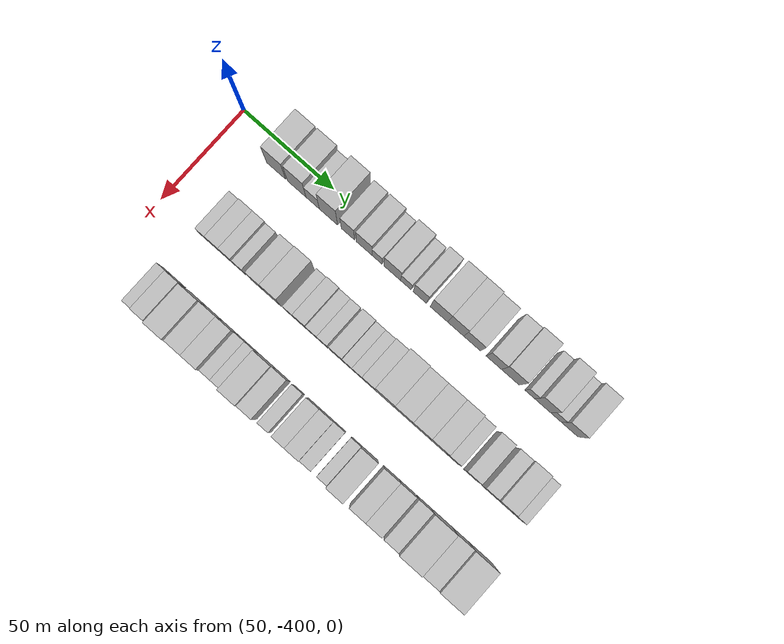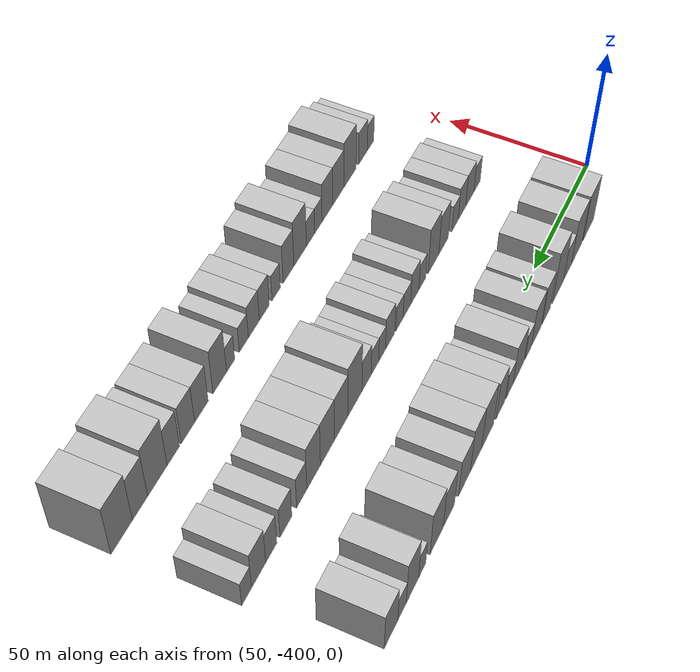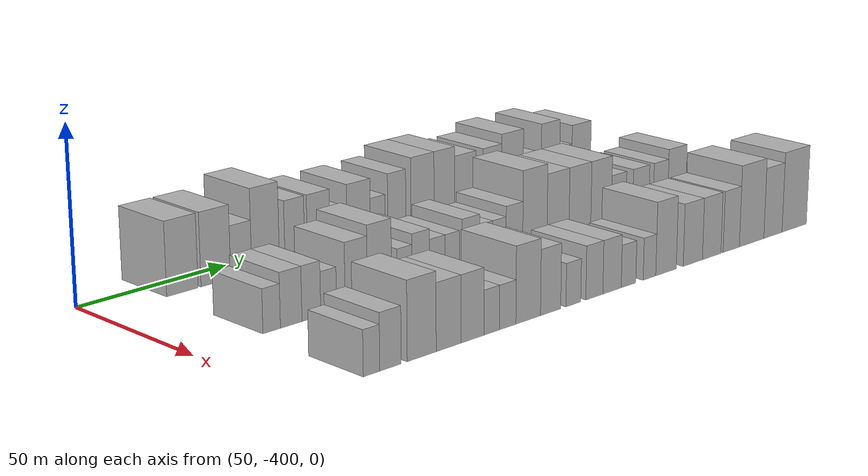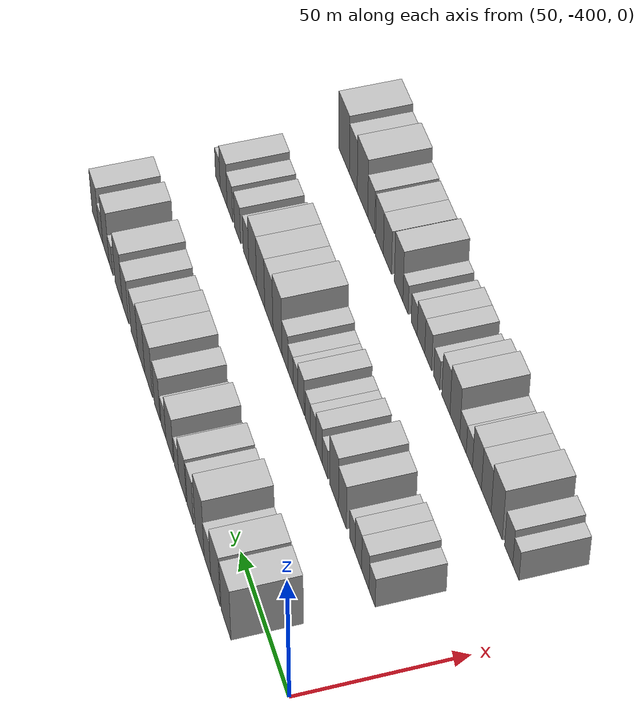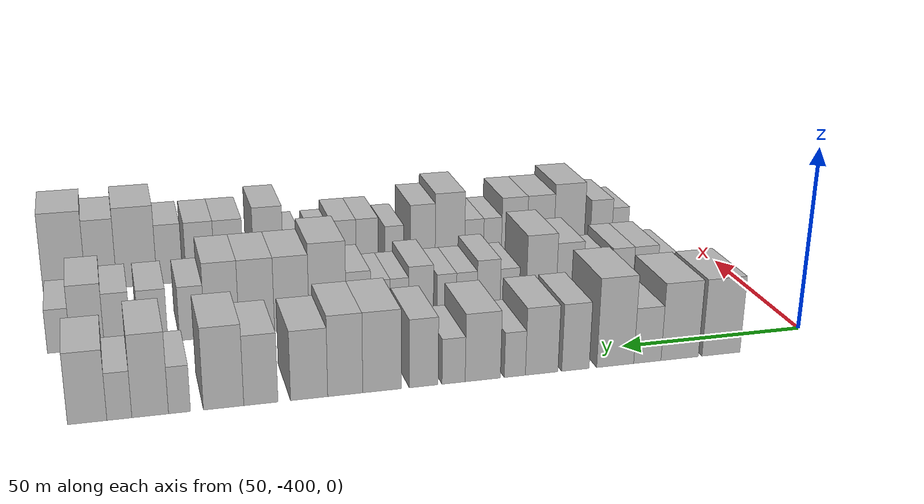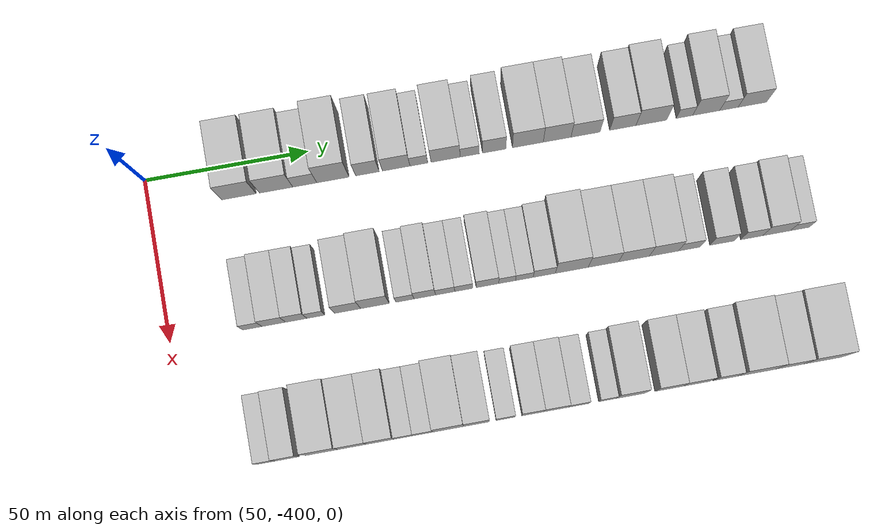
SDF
<sdf version="1.6">
 <world name="default">
  <model name="building_1">
   <static>1</static>
   <pose>50.0000 -372.7563 0 0.000000 0.000000 0.000000</pose>
   <link name="link">
    <pose>0 0 10.50 0 0 0</pose>
    <collision name="collision"><geometry><box><size>20.0000 10.4874 21.0000</size></box></geometry></collision>
    <visual name="visual">
     <cast_shadows>0</cast_shadows>
     <geometry><box><size>20.0000 10.4874 21.0000</size></box></geometry>
     <material>
      <script>
       <uri>model://HANNAS_wall/materials/scripts</uri>
       <uri>model://HANNAS_wall/materials/textures</uri>
       <name>vrc/HANNAS_wall</name>
      </script>
     </material>
    </visual>
   </link>
  </model>
  <model name="building_2">
   <static>1</static>
   <pose>50.0000 -361.4085 0 0.000000 0.000000 0.000000</pose>
   <link name="link">
    <pose>0 0 10.50 0 0 0</pose>
    <collision name="collision"><geometry><box><size>20.0000 10.2082 21.0000</size></box></geometry></collision>
    <visual name="visual">
     <cast_shadows>0</cast_shadows>
     <geometry><box><size>20.0000 10.2082 21.0000</size></box></geometry>
     <material>
      <script>
       <uri>model://HANNAS_wall/materials/scripts</uri>
       <uri>model://HANNAS_wall/materials/textures</uri>
       <name>vrc/HANNAS_wall</name>
      </script>
     </material>
    </visual>
   </link>
  </model>
  <model name="building_3">
   <static>1</static>
   <pose>50.0000 -352.6265 0 0.000000 0.000000 0.000000</pose>
   <link name="link">
    <pose>0 0 7.50 0 0 0</pose>
    <collision name="collision"><geometry><box><size>20.0000 7.3559 15.0000</size></box></geometry></collision>
    <visual name="visual">
     <cast_shadows>0</cast_shadows>
     <geometry><box><size>20.0000 7.3559 15.0000</size></box></geometry>
     <material>
      <script>
       <uri>model://HANNAS_wall/materials/scripts</uri>
       <uri>model://HANNAS_wall/materials/textures</uri>
       <name>vrc/HANNAS_wall</name>
      </script>
     </material>
    </visual>
   </link>
  </model>
  <model name="building_4">
   <static>1</static>
   <pose>50.0000 -344.0010 0 0.000000 0.000000 0.000000</pose>
   <link name="link">
    <pose>0 0 12.00 0 0 0</pose>
    <collision name="collision"><geometry><box><size>20.0000 9.8949 24.0000</size></box></geometry></collision>
    <visual name="visual">
     <cast_shadows>0</cast_shadows>
     <geometry><box><size>20.0000 9.8949 24.0000</size></box></geometry>
     <material>
      <script>
       <uri>model://HANNAS_wall/materials/scripts</uri>
       <uri>model://HANNAS_wall/materials/textures</uri>
       <name>vrc/HANNAS_wall</name>
      </script>
     </material>
    </visual>
   </link>
  </model>
  <model name="building_5">
   <static>1</static>
   <pose>50.0000 -333.4457 0 0.000000 0.000000 0.000000</pose>
   <link name="link">
    <pose>0 0 9.00 0 0 0</pose>
    <collision name="collision"><geometry><box><size>20.0000 7.2157 18.0000</size></box></geometry></collision>
    <visual name="visual">
     <cast_shadows>0</cast_shadows>
     <geometry><box><size>20.0000 7.2157 18.0000</size></box></geometry>
     <material>
      <script>
       <uri>model://HANNAS_wall/materials/scripts</uri>
       <uri>model://HANNAS_wall/materials/textures</uri>
       <name>vrc/HANNAS_wall</name>
      </script>
     </material>
    </visual>
   </link>
  </model>
  <model name="building_6">
   <static>1</static>
   <pose>50.0000 -324.6059 0 0.000000 0.000000 0.000000</pose>
   <link name="link">
    <pose>0 0 9.00 0 0 0</pose>
    <collision name="collision"><geometry><box><size>20.0000 8.4640 18.0000</size></box></geometry></collision>
    <visual name="visual">
     <cast_shadows>0</cast_shadows>
     <geometry><box><size>20.0000 8.4640 18.0000</size></box></geometry>
     <material>
      <script>
       <uri>model://HANNAS_wall/materials/scripts</uri>
       <uri>model://HANNAS_wall/materials/textures</uri>
       <name>vrc/HANNAS_wall</name>
      </script>
     </material>
    </visual>
   </link>
  </model>
  <model name="building_7">
   <static>1</static>
   <pose>50.0000 -317.6455 0 0.000000 0.000000 0.000000</pose>
   <link name="link">
    <pose>0 0 6.00 0 0 0</pose>
    <collision name="collision"><geometry><box><size>20.0000 5.4569 12.0000</size></box></geometry></collision>
    <visual name="visual">
     <cast_shadows>0</cast_shadows>
     <geometry><box><size>20.0000 5.4569 12.0000</size></box></geometry>
     <material>
      <script>
       <uri>model://HANNAS_wall/materials/scripts</uri>
       <uri>model://HANNAS_wall/materials/textures</uri>
       <name>vrc/HANNAS_wall</name>
      </script>
     </material>
    </visual>
   </link>
  </model>
  <model name="building_8">
   <static>1</static>
   <pose>50.0000 -309.4200 0 0.000000 0.000000 0.000000</pose>
   <link name="link">
    <pose>0 0 9.00 0 0 0</pose>
    <collision name="collision"><geometry><box><size>20.0000 8.9942 18.0000</size></box></geometry></collision>
    <visual name="visual">
     <cast_shadows>0</cast_shadows>
     <geometry><box><size>20.0000 8.9942 18.0000</size></box></geometry>
     <material>
      <script>
       <uri>model://HANNAS_wall/materials/scripts</uri>
       <uri>model://HANNAS_wall/materials/textures</uri>
       <name>vrc/HANNAS_wall</name>
      </script>
     </material>
    </visual>
   </link>
  </model>
  <model name="building_9">
   <static>1</static>
   <pose>50.0000 -301.9996 0 0.000000 0.000000 0.000000</pose>
   <link name="link">
    <pose>0 0 6.00 0 0 0</pose>
    <collision name="collision"><geometry><box><size>20.0000 5.8465 12.0000</size></box></geometry></collision>
    <visual name="visual">
     <cast_shadows>0</cast_shadows>
     <geometry><box><size>20.0000 5.8465 12.0000</size></box></geometry>
     <material>
      <script>
       <uri>model://HANNAS_wall/materials/scripts</uri>
       <uri>model://HANNAS_wall/materials/textures</uri>
       <name>vrc/HANNAS_wall</name>
      </script>
     </material>
    </visual>
   </link>
  </model>
  <model name="building_10">
   <static>1</static>
   <pose>50.0000 -294.4724 0 0.000000 0.000000 0.000000</pose>
   <link name="link">
    <pose>0 0 9.00 0 0 0</pose>
    <collision name="collision"><geometry><box><size>20.0000 7.2080 18.0000</size></box></geometry></collision>
    <visual name="visual">
     <cast_shadows>0</cast_shadows>
     <geometry><box><size>20.0000 7.2080 18.0000</size></box></geometry>
     <material>
      <script>
       <uri>model://HANNAS_wall/materials/scripts</uri>
       <uri>model://HANNAS_wall/materials/textures</uri>
       <name>vrc/HANNAS_wall</name>
      </script>
     </material>
    </visual>
   </link>
  </model>
  <model name="building_11">
   <static>1</static>
   <pose>50.0000 -284.1253 0 0.000000 0.000000 0.000000</pose>
   <link name="link">
    <pose>0 0 10.50 0 0 0</pose>
    <collision name="collision"><geometry><box><size>20.0000 9.4863 21.0000</size></box></geometry></collision>
    <visual name="visual">
     <cast_shadows>0</cast_shadows>
     <geometry><box><size>20.0000 9.4863 21.0000</size></box></geometry>
     <material>
      <script>
       <uri>model://HANNAS_wall/materials/scripts</uri>
       <uri>model://HANNAS_wall/materials/textures</uri>
       <name>vrc/HANNAS_wall</name>
      </script>
     </material>
    </visual>
   </link>
  </model>
  <model name="building_12">
   <static>1</static>
   <pose>50.0000 -275.1060 0 0.000000 0.000000 0.000000</pose>
   <link name="link">
    <pose>0 0 10.50 0 0 0</pose>
    <collision name="collision"><geometry><box><size>20.0000 8.5523 21.0000</size></box></geometry></collision>
    <visual name="visual">
     <cast_shadows>0</cast_shadows>
     <geometry><box><size>20.0000 8.5523 21.0000</size></box></geometry>
     <material>
      <script>
       <uri>model://HANNAS_wall/materials/scripts</uri>
       <uri>model://HANNAS_wall/materials/textures</uri>
       <name>vrc/HANNAS_wall</name>
      </script>
     </material>
    </visual>
   </link>
  </model>
  <model name="building_13">
   <static>1</static>
   <pose>50.0000 -266.3483 0 0.000000 0.000000 0.000000</pose>
   <link name="link">
    <pose>0 0 9.00 0 0 0</pose>
    <collision name="collision"><geometry><box><size>20.0000 8.9630 18.0000</size></box></geometry></collision>
    <visual name="visual">
     <cast_shadows>0</cast_shadows>
     <geometry><box><size>20.0000 8.9630 18.0000</size></box></geometry>
     <material>
      <script>
       <uri>model://HANNAS_wall/materials/scripts</uri>
       <uri>model://HANNAS_wall/materials/textures</uri>
       <name>vrc/HANNAS_wall</name>
      </script>
     </material>
    </visual>
   </link>
  </model>
  <model name="building_14">
   <static>1</static>
   <pose>50.0000 -254.8065 0 0.000000 0.000000 0.000000</pose>
   <link name="link">
    <pose>0 0 9.00 0 0 0</pose>
    <collision name="collision"><geometry><box><size>20.0000 8.1206 18.0000</size></box></geometry></collision>
    <visual name="visual">
     <cast_shadows>0</cast_shadows>
     <geometry><box><size>20.0000 8.1206 18.0000</size></box></geometry>
     <material>
      <script>
       <uri>model://HANNAS_wall/materials/scripts</uri>
       <uri>model://HANNAS_wall/materials/textures</uri>
       <name>vrc/HANNAS_wall</name>
      </script>
     </material>
    </visual>
   </link>
  </model>
  <model name="building_15">
   <static>1</static>
   <pose>50.0000 -246.0079 0 0.000000 0.000000 0.000000</pose>
   <link name="link">
    <pose>0 0 10.50 0 0 0</pose>
    <collision name="collision"><geometry><box><size>20.0000 9.4766 21.0000</size></box></geometry></collision>
    <visual name="visual">
     <cast_shadows>0</cast_shadows>
     <geometry><box><size>20.0000 9.4766 21.0000</size></box></geometry>
     <material>
      <script>
       <uri>model://HANNAS_wall/materials/scripts</uri>
       <uri>model://HANNAS_wall/materials/textures</uri>
       <name>vrc/HANNAS_wall</name>
      </script>
     </material>
    </visual>
   </link>
  </model>
  <model name="building_16">
   <static>1</static>
   <pose>50.0000 -235.7292 0 0.000000 0.000000 0.000000</pose>
   <link name="link">
    <pose>0 0 6.00 0 0 0</pose>
    <collision name="collision"><geometry><box><size>20.0000 5.0809 12.0000</size></box></geometry></collision>
    <visual name="visual">
     <cast_shadows>0</cast_shadows>
     <geometry><box><size>20.0000 5.0809 12.0000</size></box></geometry>
     <material>
      <script>
       <uri>model://HANNAS_wall/materials/scripts</uri>
       <uri>model://HANNAS_wall/materials/textures</uri>
       <name>vrc/HANNAS_wall</name>
      </script>
     </material>
    </visual>
   </link>
  </model>
  <model name="building_17">
   <static>1</static>
   <pose>50.0000 -228.9872 0 0.000000 0.000000 0.000000</pose>
   <link name="link">
    <pose>0 0 10.50 0 0 0</pose>
    <collision name="collision"><geometry><box><size>20.0000 8.4031 21.0000</size></box></geometry></collision>
    <visual name="visual">
     <cast_shadows>0</cast_shadows>
     <geometry><box><size>20.0000 8.4031 21.0000</size></box></geometry>
     <material>
      <script>
       <uri>model://HANNAS_wall/materials/scripts</uri>
       <uri>model://HANNAS_wall/materials/textures</uri>
       <name>vrc/HANNAS_wall</name>
      </script>
     </material>
    </visual>
   </link>
  </model>
  <model name="building_18">
   <static>1</static>
   <pose>50.0000 -221.9549 0 0.000000 0.000000 0.000000</pose>
   <link name="link">
    <pose>0 0 6.00 0 0 0</pose>
    <collision name="collision"><geometry><box><size>20.0000 5.6615 12.0000</size></box></geometry></collision>
    <visual name="visual">
     <cast_shadows>0</cast_shadows>
     <geometry><box><size>20.0000 5.6615 12.0000</size></box></geometry>
     <material>
      <script>
       <uri>model://HANNAS_wall/materials/scripts</uri>
       <uri>model://HANNAS_wall/materials/textures</uri>
       <name>vrc/HANNAS_wall</name>
      </script>
     </material>
    </visual>
   </link>
  </model>
  <model name="building_19">
   <static>1</static>
   <pose>50.0000 -214.6884 0 0.000000 0.000000 0.000000</pose>
   <link name="link">
    <pose>0 0 9.00 0 0 0</pose>
    <collision name="collision"><geometry><box><size>20.0000 8.8716 18.0000</size></box></geometry></collision>
    <visual name="visual">
     <cast_shadows>0</cast_shadows>
     <geometry><box><size>20.0000 8.8716 18.0000</size></box></geometry>
     <material>
      <script>
       <uri>model://HANNAS_wall/materials/scripts</uri>
       <uri>model://HANNAS_wall/materials/textures</uri>
       <name>vrc/HANNAS_wall</name>
      </script>
     </material>
    </visual>
   </link>
  </model>
  <model name="building_81">
   <static>1</static>
   <pose>90.0000 -375.1270 0 0.000000 0.000000 0.000000</pose>
   <link name="link">
    <pose>0 0 6.00 0 0 0</pose>
    <collision name="collision"><geometry><box><size>20.0000 5.7460 12.0000</size></box></geometry></collision>
    <visual name="visual">
     <cast_shadows>0</cast_shadows>
     <geometry><box><size>20.0000 5.7460 12.0000</size></box></geometry>
     <material>
      <script>
       <uri>model://HANNAS_wall/materials/scripts</uri>
       <uri>model://HANNAS_wall/materials/textures</uri>
       <name>vrc/HANNAS_wall</name>
      </script>
     </material>
    </visual>
   </link>
  </model>
  <model name="building_82">
   <static>1</static>
   <pose>90.0000 -368.6549 0 0.000000 0.000000 0.000000</pose>
   <link name="link">
    <pose>0 0 7.50 0 0 0</pose>
    <collision name="collision"><geometry><box><size>20.0000 7.1981 15.0000</size></box></geometry></collision>
    <visual name="visual">
     <cast_shadows>0</cast_shadows>
     <geometry><box><size>20.0000 7.1981 15.0000</size></box></geometry>
     <material>
      <script>
       <uri>model://HANNAS_wall/materials/scripts</uri>
       <uri>model://HANNAS_wall/materials/textures</uri>
       <name>vrc/HANNAS_wall</name>
      </script>
     </material>
    </visual>
   </link>
  </model>
  <model name="building_83">
   <static>1</static>
   <pose>90.0000 -361.8597 0 0.000000 0.000000 0.000000</pose>
   <link name="link">
    <pose>0 0 7.50 0 0 0</pose>
    <collision name="collision"><geometry><box><size>20.0000 6.3923 15.0000</size></box></geometry></collision>
    <visual name="visual">
     <cast_shadows>0</cast_shadows>
     <geometry><box><size>20.0000 6.3923 15.0000</size></box></geometry>
     <material>
      <script>
       <uri>model://HANNAS_wall/materials/scripts</uri>
       <uri>model://HANNAS_wall/materials/textures</uri>
       <name>vrc/HANNAS_wall</name>
      </script>
     </material>
    </visual>
   </link>
  </model>
  <model name="building_84">
   <static>1</static>
   <pose>90.0000 -355.9367 0 0.000000 0.000000 0.000000</pose>
   <link name="link">
    <pose>0 0 6.00 0 0 0</pose>
    <collision name="collision"><geometry><box><size>20.0000 5.4535 12.0000</size></box></geometry></collision>
    <visual name="visual">
     <cast_shadows>0</cast_shadows>
     <geometry><box><size>20.0000 5.4535 12.0000</size></box></geometry>
     <material>
      <script>
       <uri>model://HANNAS_wall/materials/scripts</uri>
       <uri>model://HANNAS_wall/materials/textures</uri>
       <name>vrc/HANNAS_wall</name>
      </script>
     </material>
    </visual>
   </link>
  </model>
  <model name="building_85">
   <static>1</static>
   <pose>90.0000 -346.2916 0 0.000000 0.000000 0.000000</pose>
   <link name="link">
    <pose>0 0 9.00 0 0 0</pose>
    <collision name="collision"><geometry><box><size>20.0000 7.8367 18.0000</size></box></geometry></collision>
    <visual name="visual">
     <cast_shadows>0</cast_shadows>
     <geometry><box><size>20.0000 7.8367 18.0000</size></box></geometry>
     <material>
      <script>
       <uri>model://HANNAS_wall/materials/scripts</uri>
       <uri>model://HANNAS_wall/materials/textures</uri>
       <name>vrc/HANNAS_wall</name>
      </script>
     </material>
    </visual>
   </link>
  </model>
  <model name="building_86">
   <static>1</static>
   <pose>90.0000 -338.0165 0 0.000000 0.000000 0.000000</pose>
   <link name="link">
    <pose>0 0 10.50 0 0 0</pose>
    <collision name="collision"><geometry><box><size>20.0000 8.7134 21.0000</size></box></geometry></collision>
    <visual name="visual">
     <cast_shadows>0</cast_shadows>
     <geometry><box><size>20.0000 8.7134 21.0000</size></box></geometry>
     <material>
      <script>
       <uri>model://HANNAS_wall/materials/scripts</uri>
       <uri>model://HANNAS_wall/materials/textures</uri>
       <name>vrc/HANNAS_wall</name>
      </script>
     </material>
    </visual>
   </link>
  </model>
  <model name="building_87">
   <static>1</static>
   <pose>90.0000 -328.9171 0 0.000000 0.000000 0.000000</pose>
   <link name="link">
    <pose>0 0 6.00 0 0 0</pose>
    <collision name="collision"><geometry><box><size>20.0000 5.4854 12.0000</size></box></geometry></collision>
    <visual name="visual">
     <cast_shadows>0</cast_shadows>
     <geometry><box><size>20.0000 5.4854 12.0000</size></box></geometry>
     <material>
      <script>
       <uri>model://HANNAS_wall/materials/scripts</uri>
       <uri>model://HANNAS_wall/materials/textures</uri>
       <name>vrc/HANNAS_wall</name>
      </script>
     </material>
    </visual>
   </link>
  </model>
  <model name="building_88">
   <static>1</static>
   <pose>90.0000 -322.8982 0 0.000000 0.000000 0.000000</pose>
   <link name="link">
    <pose>0 0 7.50 0 0 0</pose>
    <collision name="collision"><geometry><box><size>20.0000 6.5524 15.0000</size></box></geometry></collision>
    <visual name="visual">
     <cast_shadows>0</cast_shadows>
     <geometry><box><size>20.0000 6.5524 15.0000</size></box></geometry>
     <material>
      <script>
       <uri>model://HANNAS_wall/materials/scripts</uri>
       <uri>model://HANNAS_wall/materials/textures</uri>
       <name>vrc/HANNAS_wall</name>
      </script>
     </material>
    </visual>
   </link>
  </model>
  <model name="building_89">
   <static>1</static>
   <pose>90.0000 -316.6875 0 0.000000 0.000000 0.000000</pose>
   <link name="link">
    <pose>0 0 6.00 0 0 0</pose>
    <collision name="collision"><geometry><box><size>20.0000 5.8691 12.0000</size></box></geometry></collision>
    <visual name="visual">
     <cast_shadows>0</cast_shadows>
     <geometry><box><size>20.0000 5.8691 12.0000</size></box></geometry>
     <material>
      <script>
       <uri>model://HANNAS_wall/materials/scripts</uri>
       <uri>model://HANNAS_wall/materials/textures</uri>
       <name>vrc/HANNAS_wall</name>
      </script>
     </material>
    </visual>
   </link>
  </model>
  <model name="building_90">
   <static>1</static>
   <pose>90.0000 -311.0227 0 0.000000 0.000000 0.000000</pose>
   <link name="link">
    <pose>0 0 6.00 0 0 0</pose>
    <collision name="collision"><geometry><box><size>20.0000 5.4605 12.0000</size></box></geometry></collision>
    <visual name="visual">
     <cast_shadows>0</cast_shadows>
     <geometry><box><size>20.0000 5.4605 12.0000</size></box></geometry>
     <material>
      <script>
       <uri>model://HANNAS_wall/materials/scripts</uri>
       <uri>model://HANNAS_wall/materials/textures</uri>
       <name>vrc/HANNAS_wall</name>
      </script>
     </material>
    </visual>
   </link>
  </model>
  <model name="building_91">
   <static>1</static>
   <pose>90.0000 -303.8511 0 0.000000 0.000000 0.000000</pose>
   <link name="link">
    <pose>0 0 7.50 0 0 0</pose>
    <collision name="collision"><geometry><box><size>20.0000 6.8826 15.0000</size></box></geometry></collision>
    <visual name="visual">
     <cast_shadows>0</cast_shadows>
     <geometry><box><size>20.0000 6.8826 15.0000</size></box></geometry>
     <material>
      <script>
       <uri>model://HANNAS_wall/materials/scripts</uri>
       <uri>model://HANNAS_wall/materials/textures</uri>
       <name>vrc/HANNAS_wall</name>
      </script>
     </material>
    </visual>
   </link>
  </model>
  <model name="building_92">
   <static>1</static>
   <pose>90.0000 -297.8560 0 0.000000 0.000000 0.000000</pose>
   <link name="link">
    <pose>0 0 6.00 0 0 0</pose>
    <collision name="collision"><geometry><box><size>20.0000 5.1076 12.0000</size></box></geometry></collision>
    <visual name="visual">
     <cast_shadows>0</cast_shadows>
     <geometry><box><size>20.0000 5.1076 12.0000</size></box></geometry>
     <material>
      <script>
       <uri>model://HANNAS_wall/materials/scripts</uri>
       <uri>model://HANNAS_wall/materials/textures</uri>
       <name>vrc/HANNAS_wall</name>
      </script>
     </material>
    </visual>
   </link>
  </model>
  <model name="building_93">
   <static>1</static>
   <pose>90.0000 -292.6123 0 0.000000 0.000000 0.000000</pose>
   <link name="link">
    <pose>0 0 6.00 0 0 0</pose>
    <collision name="collision"><geometry><box><size>20.0000 5.3798 12.0000</size></box></geometry></collision>
    <visual name="visual">
     <cast_shadows>0</cast_shadows>
     <geometry><box><size>20.0000 5.3798 12.0000</size></box></geometry>
     <material>
      <script>
       <uri>model://HANNAS_wall/materials/scripts</uri>
       <uri>model://HANNAS_wall/materials/textures</uri>
       <name>vrc/HANNAS_wall</name>
      </script>
     </material>
    </visual>
   </link>
  </model>
  <model name="building_94">
   <static>1</static>
   <pose>90.0000 -286.5509 0 0.000000 0.000000 0.000000</pose>
   <link name="link">
    <pose>0 0 7.50 0 0 0</pose>
    <collision name="collision"><geometry><box><size>20.0000 6.7430 15.0000</size></box></geometry></collision>
    <visual name="visual">
     <cast_shadows>0</cast_shadows>
     <geometry><box><size>20.0000 6.7430 15.0000</size></box></geometry>
     <material>
      <script>
       <uri>model://HANNAS_wall/materials/scripts</uri>
       <uri>model://HANNAS_wall/materials/textures</uri>
       <name>vrc/HANNAS_wall</name>
      </script>
     </material>
    </visual>
   </link>
  </model>
  <model name="building_95">
   <static>1</static>
   <pose>90.0000 -278.1666 0 0.000000 0.000000 0.000000</pose>
   <link name="link">
    <pose>0 0 12.00 0 0 0</pose>
    <collision name="collision"><geometry><box><size>20.0000 10.0256 24.0000</size></box></geometry></collision>
    <visual name="visual">
     <cast_shadows>0</cast_shadows>
     <geometry><box><size>20.0000 10.0256 24.0000</size></box></geometry>
     <material>
      <script>
       <uri>model://HANNAS_wall/materials/scripts</uri>
       <uri>model://HANNAS_wall/materials/textures</uri>
       <name>vrc/HANNAS_wall</name>
      </script>
     </material>
    </visual>
   </link>
  </model>
  <model name="building_96">
   <static>1</static>
   <pose>90.0000 -268.5177 0 0.000000 0.000000 0.000000</pose>
   <link name="link">
    <pose>0 0 10.50 0 0 0</pose>
    <collision name="collision"><geometry><box><size>20.0000 9.2722 21.0000</size></box></geometry></collision>
    <visual name="visual">
     <cast_shadows>0</cast_shadows>
     <geometry><box><size>20.0000 9.2722 21.0000</size></box></geometry>
     <material>
      <script>
       <uri>model://HANNAS_wall/materials/scripts</uri>
       <uri>model://HANNAS_wall/materials/textures</uri>
       <name>vrc/HANNAS_wall</name>
      </script>
     </material>
    </visual>
   </link>
  </model>
  <model name="building_97">
   <static>1</static>
   <pose>90.0000 -259.1848 0 0.000000 0.000000 0.000000</pose>
   <link name="link">
    <pose>0 0 10.50 0 0 0</pose>
    <collision name="collision"><geometry><box><size>20.0000 9.3937 21.0000</size></box></geometry></collision>
    <visual name="visual">
     <cast_shadows>0</cast_shadows>
     <geometry><box><size>20.0000 9.3937 21.0000</size></box></geometry>
     <material>
      <script>
       <uri>model://HANNAS_wall/materials/scripts</uri>
       <uri>model://HANNAS_wall/materials/textures</uri>
       <name>vrc/HANNAS_wall</name>
      </script>
     </material>
    </visual>
   </link>
  </model>
  <model name="building_98">
   <static>1</static>
   <pose>90.0000 -249.9941 0 0.000000 0.000000 0.000000</pose>
   <link name="link">
    <pose>0 0 10.50 0 0 0</pose>
    <collision name="collision"><geometry><box><size>20.0000 8.9876 21.0000</size></box></geometry></collision>
    <visual name="visual">
     <cast_shadows>0</cast_shadows>
     <geometry><box><size>20.0000 8.9876 21.0000</size></box></geometry>
     <material>
      <script>
       <uri>model://HANNAS_wall/materials/scripts</uri>
       <uri>model://HANNAS_wall/materials/textures</uri>
       <name>vrc/HANNAS_wall</name>
      </script>
     </material>
    </visual>
   </link>
  </model>
  <model name="building_99">
   <static>1</static>
   <pose>90.0000 -242.2187 0 0.000000 0.000000 0.000000</pose>
   <link name="link">
    <pose>0 0 7.50 0 0 0</pose>
    <collision name="collision"><geometry><box><size>20.0000 6.5631 15.0000</size></box></geometry></collision>
    <visual name="visual">
     <cast_shadows>0</cast_shadows>
     <geometry><box><size>20.0000 6.5631 15.0000</size></box></geometry>
     <material>
      <script>
       <uri>model://HANNAS_wall/materials/scripts</uri>
       <uri>model://HANNAS_wall/materials/textures</uri>
       <name>vrc/HANNAS_wall</name>
      </script>
     </material>
    </visual>
   </link>
  </model>
  <model name="building_100">
   <static>1</static>
   <pose>90.0000 -232.2172 0 0.000000 0.000000 0.000000</pose>
   <link name="link">
    <pose>0 0 7.50 0 0 0</pose>
    <collision name="collision"><geometry><box><size>20.0000 7.4400 15.0000</size></box></geometry></collision>
    <visual name="visual">
     <cast_shadows>0</cast_shadows>
     <geometry><box><size>20.0000 7.4400 15.0000</size></box></geometry>
     <material>
      <script>
       <uri>model://HANNAS_wall/materials/scripts</uri>
       <uri>model://HANNAS_wall/materials/textures</uri>
       <name>vrc/HANNAS_wall</name>
      </script>
     </material>
    </visual>
   </link>
  </model>
  <model name="building_101">
   <static>1</static>
   <pose>90.0000 -223.1096 0 0.000000 0.000000 0.000000</pose>
   <link name="link">
    <pose>0 0 7.50 0 0 0</pose>
    <collision name="collision"><geometry><box><size>20.0000 6.7752 15.0000</size></box></geometry></collision>
    <visual name="visual">
     <cast_shadows>0</cast_shadows>
     <geometry><box><size>20.0000 6.7752 15.0000</size></box></geometry>
     <material>
      <script>
       <uri>model://HANNAS_wall/materials/scripts</uri>
       <uri>model://HANNAS_wall/materials/textures</uri>
       <name>vrc/HANNAS_wall</name>
      </script>
     </material>
    </visual>
   </link>
  </model>
  <model name="building_102">
   <static>1</static>
   <pose>90.0000 -215.4660 0 0.000000 0.000000 0.000000</pose>
   <link name="link">
    <pose>0 0 9.00 0 0 0</pose>
    <collision name="collision"><geometry><box><size>20.0000 8.5120 18.0000</size></box></geometry></collision>
    <visual name="visual">
     <cast_shadows>0</cast_shadows>
     <geometry><box><size>20.0000 8.5120 18.0000</size></box></geometry>
     <material>
      <script>
       <uri>model://HANNAS_wall/materials/scripts</uri>
       <uri>model://HANNAS_wall/materials/textures</uri>
       <name>vrc/HANNAS_wall</name>
      </script>
     </material>
    </visual>
   </link>
  </model>
  <model name="building_103">
   <static>1</static>
   <pose>90.0000 -208.3196 0 0.000000 0.000000 0.000000</pose>
   <link name="link">
    <pose>0 0 6.00 0 0 0</pose>
    <collision name="collision"><geometry><box><size>20.0000 5.7806 12.0000</size></box></geometry></collision>
    <visual name="visual">
     <cast_shadows>0</cast_shadows>
     <geometry><box><size>20.0000 5.7806 12.0000</size></box></geometry>
     <material>
      <script>
       <uri>model://HANNAS_wall/materials/scripts</uri>
       <uri>model://HANNAS_wall/materials/textures</uri>
       <name>vrc/HANNAS_wall</name>
      </script>
     </material>
    </visual>
   </link>
  </model>
  <model name="building_170">
   <static>1</static>
   <pose>130.0000 -377.3194 0 0.000000 0.000000 0.000000</pose>
   <link name="link">
    <pose>0 0 6.00 0 0 0</pose>
    <collision name="collision"><geometry><box><size>20.0000 5.3612 12.0000</size></box></geometry></collision>
    <visual name="visual">
     <cast_shadows>0</cast_shadows>
     <geometry><box><size>20.0000 5.3612 12.0000</size></box></geometry>
     <material>
      <script>
       <uri>model://HANNAS_wall/materials/scripts</uri>
       <uri>model://HANNAS_wall/materials/textures</uri>
       <name>vrc/HANNAS_wall</name>
      </script>
     </material>
    </visual>
   </link>
  </model>
  <model name="building_171">
   <static>1</static>
   <pose>130.0000 -371.1107 0 0.000000 0.000000 0.000000</pose>
   <link name="link">
    <pose>0 0 7.50 0 0 0</pose>
    <collision name="collision"><geometry><box><size>20.0000 7.0563 15.0000</size></box></geometry></collision>
    <visual name="visual">
     <cast_shadows>0</cast_shadows>
     <geometry><box><size>20.0000 7.0563 15.0000</size></box></geometry>
     <material>
      <script>
       <uri>model://HANNAS_wall/materials/scripts</uri>
       <uri>model://HANNAS_wall/materials/textures</uri>
       <name>vrc/HANNAS_wall</name>
      </script>
     </material>
    </visual>
   </link>
  </model>
  <model name="building_172">
   <static>1</static>
   <pose>130.0000 -360.6741 0 0.000000 0.000000 0.000000</pose>
   <link name="link">
    <pose>0 0 10.50 0 0 0</pose>
    <collision name="collision"><geometry><box><size>20.0000 9.8169 21.0000</size></box></geometry></collision>
    <visual name="visual">
     <cast_shadows>0</cast_shadows>
     <geometry><box><size>20.0000 9.8169 21.0000</size></box></geometry>
     <material>
      <script>
       <uri>model://HANNAS_wall/materials/scripts</uri>
       <uri>model://HANNAS_wall/materials/textures</uri>
       <name>vrc/HANNAS_wall</name>
      </script>
     </material>
    </visual>
   </link>
  </model>
  <model name="building_173">
   <static>1</static>
   <pose>130.0000 -351.4512 0 0.000000 0.000000 0.000000</pose>
   <link name="link">
    <pose>0 0 9.00 0 0 0</pose>
    <collision name="collision"><geometry><box><size>20.0000 8.6289 18.0000</size></box></geometry></collision>
    <visual name="visual">
     <cast_shadows>0</cast_shadows>
     <geometry><box><size>20.0000 8.6289 18.0000</size></box></geometry>
     <material>
      <script>
       <uri>model://HANNAS_wall/materials/scripts</uri>
       <uri>model://HANNAS_wall/materials/textures</uri>
       <name>vrc/HANNAS_wall</name>
      </script>
     </material>
    </visual>
   </link>
  </model>
  <model name="building_174">
   <static>1</static>
   <pose>130.0000 -343.0787 0 0.000000 0.000000 0.000000</pose>
   <link name="link">
    <pose>0 0 9.00 0 0 0</pose>
    <collision name="collision"><geometry><box><size>20.0000 8.1161 18.0000</size></box></geometry></collision>
    <visual name="visual">
     <cast_shadows>0</cast_shadows>
     <geometry><box><size>20.0000 8.1161 18.0000</size></box></geometry>
     <material>
      <script>
       <uri>model://HANNAS_wall/materials/scripts</uri>
       <uri>model://HANNAS_wall/materials/textures</uri>
       <name>vrc/HANNAS_wall</name>
      </script>
     </material>
    </visual>
   </link>
  </model>
  <model name="building_175">
   <static>1</static>
   <pose>130.0000 -336.1950 0 0.000000 0.000000 0.000000</pose>
   <link name="link">
    <pose>0 0 6.00 0 0 0</pose>
    <collision name="collision"><geometry><box><size>20.0000 5.6513 12.0000</size></box></geometry></collision>
    <visual name="visual">
     <cast_shadows>0</cast_shadows>
     <geometry><box><size>20.0000 5.6513 12.0000</size></box></geometry>
     <material>
      <script>
       <uri>model://HANNAS_wall/materials/scripts</uri>
       <uri>model://HANNAS_wall/materials/textures</uri>
       <name>vrc/HANNAS_wall</name>
      </script>
     </material>
    </visual>
   </link>
  </model>
  <model name="building_176">
   <static>1</static>
   <pose>130.0000 -330.3906 0 0.000000 0.000000 0.000000</pose>
   <link name="link">
    <pose>0 0 6.00 0 0 0</pose>
    <collision name="collision"><geometry><box><size>20.0000 5.9576 12.0000</size></box></geometry></collision>
    <visual name="visual">
     <cast_shadows>0</cast_shadows>
     <geometry><box><size>20.0000 5.9576 12.0000</size></box></geometry>
     <material>
      <script>
       <uri>model://HANNAS_wall/materials/scripts</uri>
       <uri>model://HANNAS_wall/materials/textures</uri>
       <name>vrc/HANNAS_wall</name>
      </script>
     </material>
    </visual>
   </link>
  </model>
  <model name="building_177">
   <static>1</static>
   <pose>130.0000 -322.8270 0 0.000000 0.000000 0.000000</pose>
   <link name="link">
    <pose>0 0 10.50 0 0 0</pose>
    <collision name="collision"><geometry><box><size>20.0000 9.1695 21.0000</size></box></geometry></collision>
    <visual name="visual">
     <cast_shadows>0</cast_shadows>
     <geometry><box><size>20.0000 9.1695 21.0000</size></box></geometry>
     <material>
      <script>
       <uri>model://HANNAS_wall/materials/scripts</uri>
       <uri>model://HANNAS_wall/materials/textures</uri>
       <name>vrc/HANNAS_wall</name>
      </script>
     </material>
    </visual>
   </link>
  </model>
  <model name="building_178">
   <static>1</static>
   <pose>130.0000 -314.3953 0 0.000000 0.000000 0.000000</pose>
   <link name="link">
    <pose>0 0 9.00 0 0 0</pose>
    <collision name="collision"><geometry><box><size>20.0000 7.6940 18.0000</size></box></geometry></collision>
    <visual name="visual">
     <cast_shadows>0</cast_shadows>
     <geometry><box><size>20.0000 7.6940 18.0000</size></box></geometry>
     <material>
      <script>
       <uri>model://HANNAS_wall/materials/scripts</uri>
       <uri>model://HANNAS_wall/materials/textures</uri>
       <name>vrc/HANNAS_wall</name>
      </script>
     </material>
    </visual>
   </link>
  </model>
  <model name="building_179">
   <static>1</static>
   <pose>130.0000 -305.6722 0 0.000000 0.000000 0.000000</pose>
   <link name="link">
    <pose>0 0 6.00 0 0 0</pose>
    <collision name="collision"><geometry><box><size>20.0000 5.7523 12.0000</size></box></geometry></collision>
    <visual name="visual">
     <cast_shadows>0</cast_shadows>
     <geometry><box><size>20.0000 5.7523 12.0000</size></box></geometry>
     <material>
      <script>
       <uri>model://HANNAS_wall/materials/scripts</uri>
       <uri>model://HANNAS_wall/materials/textures</uri>
       <name>vrc/HANNAS_wall</name>
      </script>
     </material>
    </visual>
   </link>
  </model>
  <model name="building_180">
   <static>1</static>
   <pose>130.0000 -297.4194 0 0.000000 0.000000 0.000000</pose>
   <link name="link">
    <pose>0 0 7.50 0 0 0</pose>
    <collision name="collision"><geometry><box><size>20.0000 6.7532 15.0000</size></box></geometry></collision>
    <visual name="visual">
     <cast_shadows>0</cast_shadows>
     <geometry><box><size>20.0000 6.7532 15.0000</size></box></geometry>
     <material>
      <script>
       <uri>model://HANNAS_wall/materials/scripts</uri>
       <uri>model://HANNAS_wall/materials/textures</uri>
       <name>vrc/HANNAS_wall</name>
      </script>
     </material>
    </visual>
   </link>
  </model>
  <model name="building_181">
   <static>1</static>
   <pose>130.0000 -290.3353 0 0.000000 0.000000 0.000000</pose>
   <link name="link">
    <pose>0 0 7.50 0 0 0</pose>
    <collision name="collision"><geometry><box><size>20.0000 7.4150 15.0000</size></box></geometry></collision>
    <visual name="visual">
     <cast_shadows>0</cast_shadows>
     <geometry><box><size>20.0000 7.4150 15.0000</size></box></geometry>
     <material>
      <script>
       <uri>model://HANNAS_wall/materials/scripts</uri>
       <uri>model://HANNAS_wall/materials/textures</uri>
       <name>vrc/HANNAS_wall</name>
      </script>
     </material>
    </visual>
   </link>
  </model>
  <model name="building_182">
   <static>1</static>
   <pose>130.0000 -283.6296 0 0.000000 0.000000 0.000000</pose>
   <link name="link">
    <pose>0 0 6.00 0 0 0</pose>
    <collision name="collision"><geometry><box><size>20.0000 5.9964 12.0000</size></box></geometry></collision>
    <visual name="visual">
     <cast_shadows>0</cast_shadows>
     <geometry><box><size>20.0000 5.9964 12.0000</size></box></geometry>
     <material>
      <script>
       <uri>model://HANNAS_wall/materials/scripts</uri>
       <uri>model://HANNAS_wall/materials/textures</uri>
       <name>vrc/HANNAS_wall</name>
      </script>
     </material>
    </visual>
   </link>
  </model>
  <model name="building_183">
   <static>1</static>
   <pose>130.0000 -274.9904 0 0.000000 0.000000 0.000000</pose>
   <link name="link">
    <pose>0 0 6.00 0 0 0</pose>
    <collision name="collision"><geometry><box><size>20.0000 5.2821 12.0000</size></box></geometry></collision>
    <visual name="visual">
     <cast_shadows>0</cast_shadows>
     <geometry><box><size>20.0000 5.2821 12.0000</size></box></geometry>
     <material>
      <script>
       <uri>model://HANNAS_wall/materials/scripts</uri>
       <uri>model://HANNAS_wall/materials/textures</uri>
       <name>vrc/HANNAS_wall</name>
      </script>
     </material>
    </visual>
   </link>
  </model>
  <model name="building_184">
   <static>1</static>
   <pose>130.0000 -267.9913 0 0.000000 0.000000 0.000000</pose>
   <link name="link">
    <pose>0 0 10.50 0 0 0</pose>
    <collision name="collision"><geometry><box><size>20.0000 8.7160 21.0000</size></box></geometry></collision>
    <visual name="visual">
     <cast_shadows>0</cast_shadows>
     <geometry><box><size>20.0000 8.7160 21.0000</size></box></geometry>
     <material>
      <script>
       <uri>model://HANNAS_wall/materials/scripts</uri>
       <uri>model://HANNAS_wall/materials/textures</uri>
       <name>vrc/HANNAS_wall</name>
      </script>
     </material>
    </visual>
   </link>
  </model>
  <model name="building_185">
   <static>1</static>
   <pose>130.0000 -256.4386 0 0.000000 0.000000 0.000000</pose>
   <link name="link">
    <pose>0 0 9.00 0 0 0</pose>
    <collision name="collision"><geometry><box><size>20.0000 8.3895 18.0000</size></box></geometry></collision>
    <visual name="visual">
     <cast_shadows>0</cast_shadows>
     <geometry><box><size>20.0000 8.3895 18.0000</size></box></geometry>
     <material>
      <script>
       <uri>model://HANNAS_wall/materials/scripts</uri>
       <uri>model://HANNAS_wall/materials/textures</uri>
       <name>vrc/HANNAS_wall</name>
      </script>
     </material>
    </visual>
   </link>
  </model>
  <model name="building_186">
   <static>1</static>
   <pose>130.0000 -248.1444 0 0.000000 0.000000 0.000000</pose>
   <link name="link">
    <pose>0 0 9.00 0 0 0</pose>
    <collision name="collision"><geometry><box><size>20.0000 8.1988 18.0000</size></box></geometry></collision>
    <visual name="visual">
     <cast_shadows>0</cast_shadows>
     <geometry><box><size>20.0000 8.1988 18.0000</size></box></geometry>
     <material>
      <script>
       <uri>model://HANNAS_wall/materials/scripts</uri>
       <uri>model://HANNAS_wall/materials/textures</uri>
       <name>vrc/HANNAS_wall</name>
      </script>
     </material>
    </visual>
   </link>
  </model>
  <model name="building_187">
   <static>1</static>
   <pose>130.0000 -239.3566 0 0.000000 0.000000 0.000000</pose>
   <link name="link">
    <pose>0 0 9.00 0 0 0</pose>
    <collision name="collision"><geometry><box><size>20.0000 7.3768 18.0000</size></box></geometry></collision>
    <visual name="visual">
     <cast_shadows>0</cast_shadows>
     <geometry><box><size>20.0000 7.3768 18.0000</size></box></geometry>
     <material>
      <script>
       <uri>model://HANNAS_wall/materials/scripts</uri>
       <uri>model://HANNAS_wall/materials/textures</uri>
       <name>vrc/HANNAS_wall</name>
      </script>
     </material>
    </visual>
   </link>
  </model>
  <model name="building_188">
   <static>1</static>
   <pose>130.0000 -230.0047 0 0.000000 0.000000 0.000000</pose>
   <link name="link">
    <pose>0 0 12.00 0 0 0</pose>
    <collision name="collision"><geometry><box><size>20.0000 11.3269 24.0000</size></box></geometry></collision>
    <visual name="visual">
     <cast_shadows>0</cast_shadows>
     <geometry><box><size>20.0000 11.3269 24.0000</size></box></geometry>
     <material>
      <script>
       <uri>model://HANNAS_wall/materials/scripts</uri>
       <uri>model://HANNAS_wall/materials/textures</uri>
       <name>vrc/HANNAS_wall</name>
      </script>
     </material>
    </visual>
   </link>
  </model>
  <model name="building_189">
   <static>1</static>
   <pose>130.0000 -220.0367 0 0.000000 0.000000 0.000000</pose>
   <link name="link">
    <pose>0 0 10.50 0 0 0</pose>
    <collision name="collision"><geometry><box><size>20.0000 8.6092 21.0000</size></box></geometry></collision>
    <visual name="visual">
     <cast_shadows>0</cast_shadows>
     <geometry><box><size>20.0000 8.6092 21.0000</size></box></geometry>
     <material>
      <script>
       <uri>model://HANNAS_wall/materials/scripts</uri>
       <uri>model://HANNAS_wall/materials/textures</uri>
       <name>vrc/HANNAS_wall</name>
      </script>
     </material>
    </visual>
   </link>
  </model>
  <model name="building_190">
   <static>1</static>
   <pose>130.0000 -209.8397 0 0.000000 0.000000 0.000000</pose>
   <link name="link">
    <pose>0 0 12.00 0 0 0</pose>
    <collision name="collision"><geometry><box><size>20.0000 11.7849 24.0000</size></box></geometry></collision>
    <visual name="visual">
     <cast_shadows>0</cast_shadows>
     <geometry><box><size>20.0000 11.7849 24.0000</size></box></geometry>
     <material>
      <script>
       <uri>model://HANNAS_wall/materials/scripts</uri>
       <uri>model://HANNAS_wall/materials/textures</uri>
       <name>vrc/HANNAS_wall</name>
      </script>
     </material>
    </visual>
   </link>
  </model>
 </world>
</sdf>
